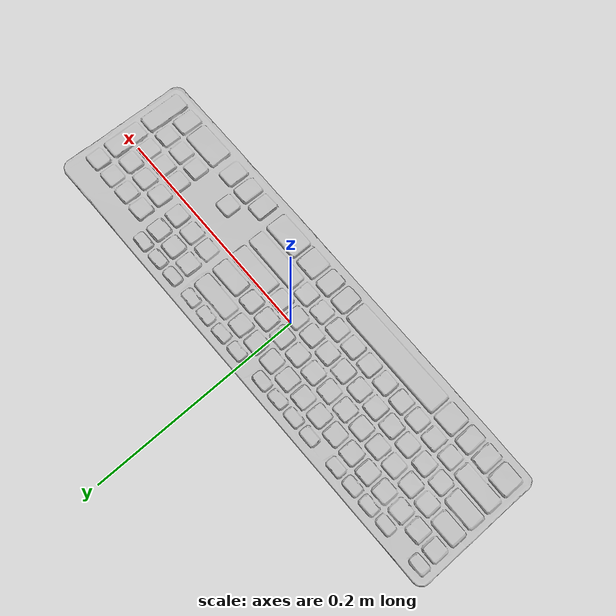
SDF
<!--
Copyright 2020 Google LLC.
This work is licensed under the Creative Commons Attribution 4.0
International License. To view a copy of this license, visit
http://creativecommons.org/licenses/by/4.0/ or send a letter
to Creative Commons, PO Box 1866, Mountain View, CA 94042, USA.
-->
<?xml version="1.0" ?>
<sdf version="1.6">
    <model name="Kanex_MultiSync_Wireless_Keyboard">
        <link name="link_0">
            <visual name="visual">
                <geometry>
                    <mesh>
                        <uri>meshes/model.obj</uri>
                    </mesh>
                </geometry>
            </visual>
            <collision name="collision_0">
                <geometry>
                    <mesh>
                        <uri>meshes/model.obj</uri>
                    </mesh>
                </geometry>
            </collision>
        </link>
    </model>
</sdf>
